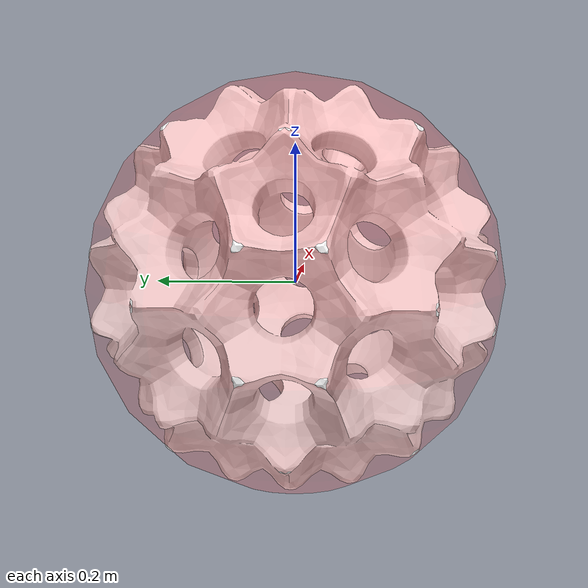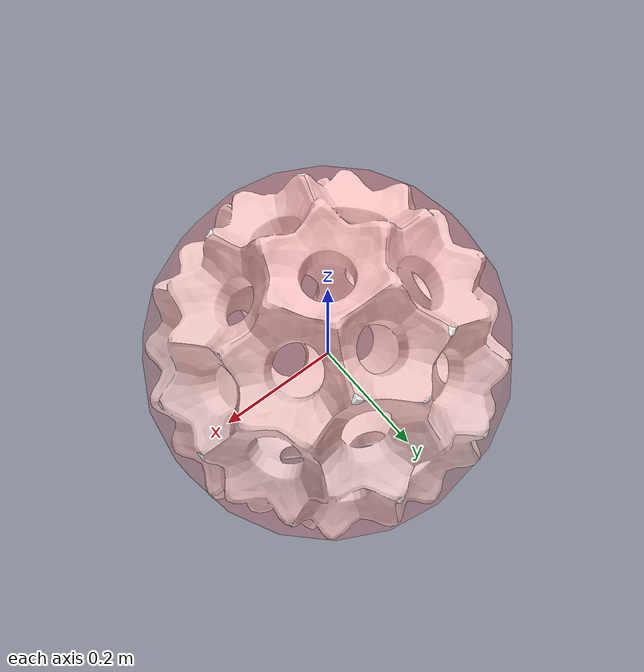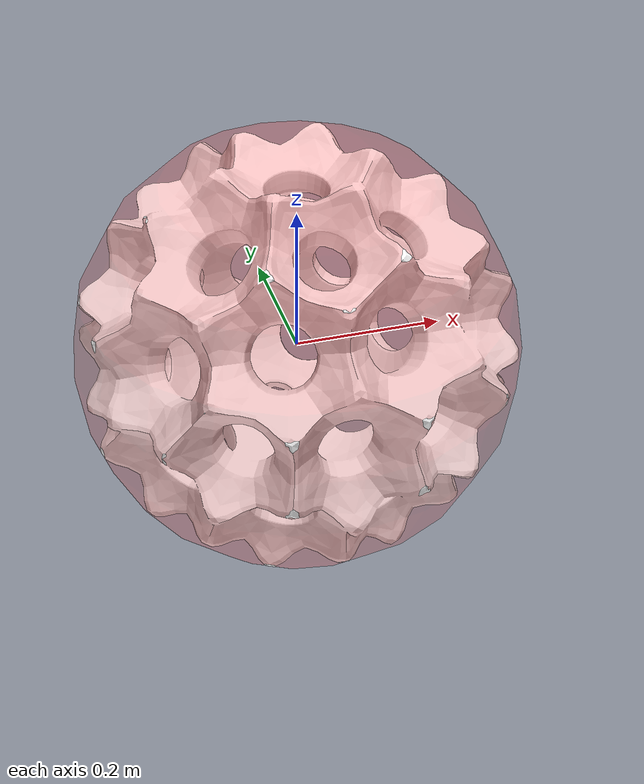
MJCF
<mujoco model="decorative_sphere">
  <asset>
    <mesh
      name="decorative_sphere_visual_mesh"
      file="assets/decorative_sphere/decorative_sphere.obj"
      scale="0.28 0.28 0.28"/>

    <!-- Base color -->
    <texture
      name="decorative_sphere_albedo"
      type="2d"
      file="assets/decorative_sphere/Hex_Sphere_albedo.png"
      nchannel="3"/>

    <!-- Normal map -->
    <texture
      name="decorative_sphere_normal"
      type="2d"
      file="assets/decorative_sphere/Hex_Sphere_normal.png"
      nchannel="3"/>

    <material
      name="decorative_sphere_mat"
      texuniform="false"
      reflectance="0.0"
      shininess="0.1"
      specular="0.1">

      <layer texture="decorative_sphere_albedo" role="rgb"/>
      <layer texture="decorative_sphere_normal" role="normal"/>
    </material>
  </asset>

  <worldbody>
    <body name="decorative_sphere_body" pos="0 0 0">
      <freejoint/>

      <geom
        name="decorative_sphere_collision_geom"
        type="sphere"
        size="0.3"
        density="300"
        contype="1"
        conaffinity="1"
        group="0"
        rgba="1 0 0 0.2"/>

      <geom
        name="decorative_sphere_visual_geom"
        type="mesh"
        mesh="decorative_sphere_visual_mesh"
        material="decorative_sphere_mat"
        contype="0"
        conaffinity="0"
        group="1"/>
    </body>
  </worldbody>
</mujoco>
